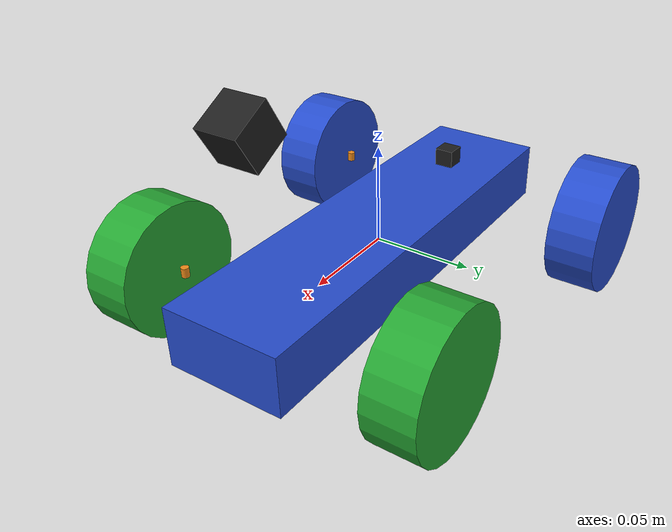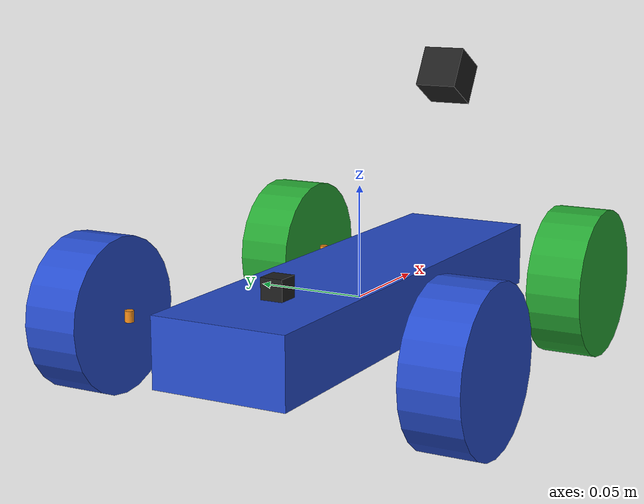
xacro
<?xml version="1.0" ?>
<robot name="jetracer" xmlns:xacro="http://www.ros.org/wiki/xacro">

  <gazebo reference="link_chassis">
    <material>Gazebo/Orange</material>
  </gazebo>
  <gazebo reference="link_back_left_wheel">
    <material>Gazebo/Blue</material>
  </gazebo>
  <gazebo reference="link_back_left_axle">
    <material>Gazebo/Orange</material>
  </gazebo>
  <gazebo reference="link_back_right_wheel">
    <material>Gazebo/Blue</material>
  </gazebo>
  <gazebo reference="link_back_right_axle">
    <material>Gazebo/Orange</material>
  </gazebo>
  <gazebo reference="link_front_left_wheel">
    <material>Gazebo/Green</material>
  </gazebo>
  <gazebo reference="link_front_left_axle">
    <material>Gazebo/Orange</material>
  </gazebo>
  <gazebo reference="link_front_right_wheel">
    <material>Gazebo/Green</material>
  </gazebo>
  <gazebo reference="link_front_right_axle">
    <material>Gazebo/Orange</material>
  </gazebo>
  <gazebo reference="camera_link">
    <material>Gazebo/Black</material>
  </gazebo>
  <gazebo reference="imu_link">
    <material>Gazebo/Black</material>
  </gazebo>

  <!-- camera -->
  <gazebo reference="camera_link">
    <sensor type="camera" name="main_cam">
      <update_rate>30.0</update_rate>
      <camera name="head">
        <horizontal_fov>1.2217305</horizontal_fov>
        <image>
          <width>640</width>
          <height>360</height>
          <format>R8G8B8</format>
        </image>
        <clip>
          <near>0.02</near>
          <far>300</far>
        </clip>
        <noise>
          <type>gaussian</type>
          <!-- Noise is sampled independently per pixel on each frame.
               That pixel's noise value is added to each of its color
               channels, which at that point lie in the range [0,1]. -->
          <mean>0.0</mean>
          <stddev>0.007</stddev>
        </noise>
      </camera>
      <plugin name="camera_controller" filename="libgazebo_ros_camera.so">
        <alwaysOn>true</alwaysOn>
        <updateRate>60.0</updateRate>
        <cameraName>camera1</cameraName>
        <imageTopicName>image_raw</imageTopicName>
        <cameraInfoTopicName>camera_info</cameraInfoTopicName>
        <frameName>camera_link</frameName>
        <hackBaseline>0.07</hackBaseline>
        <distortionK1>0.0</distortionK1>
        <distortionK2>0.0</distortionK2>
        <distortionK3>0.0</distortionK3>
        <distortionT1>0.0</distortionT1>
        <distortionT2>0.0</distortionT2>
      </plugin>
    </sensor>
  </gazebo>

  <!--IMU sensor-->
  <gazebo reference="imu_link">
    <gravity>false</gravity>
    <sensor name="imu_sensor" type="imu">
      <always_on>true</always_on>
      <update_rate>30.0</update_rate>
      <visualize>true</visualize>
      <topic>__default_topic__</topic>
      <plugin filename="libgazebo_ros_imu_sensor.so" name="imu_plugin">
        <topicName>imu</topicName>
        <bodyName>imu_link</bodyName>
        <updateRateHZ>50.0</updateRateHZ>
        <gaussianNoise>0.0</gaussianNoise>
        <xyzOffset>0 0 0</xyzOffset>
        <rpyOffset>0 0 0</rpyOffset>
        <frameName>imu_link</frameName>
        <initialOrientationAsReference>false</initialOrientationAsReference>
      </plugin>
      <pose>0 0 0 0 0 0</pose>
    </sensor>
  </gazebo>

  <link name="link_chassis">
    <!-- pose and inertial -->
    <pose>0 0 0 0 0 0</pose>
    <inertial>
      <mass value="1.03025"/>
      <origin rpy="0 0 0" xyz="0 0 0"/>
      <!--mass * ( y*y  + z * z) / 12-->
      <inertia ixx="0.00038634375" ixy="0" ixz="0" iyy="0.00461895417" iyz="0" izz="0.00485076042"/>
    </inertial>
    <!-- body -->
    <collision name="collision_chassis">
      <geometry>
        <box size="0.23 0.06 0.03"/>
      </geometry>
    </collision>
    <visual>
      <origin rpy="0 0 0" xyz="0 0 0"/>
      <geometry>
        <box size="0.23 0.06 0.03"/>
      </geometry>
      <material name="blue"/>
    </visual>
  </link>
  <!--wheels-->>
  <link name="link_back_right_wheel">
    <inertial>
      <mass value="0.0361"/>
      <origin rpy="0 -1.5707 -1.5707" xyz="0 0 0"/>
      <inertia ixx="1.231311e-5" ixy="0" ixz="0" iyy="1.231311e-5" iyz="0" izz="0.0000208658"/> <!--small i cause error,0.5*m*R^2-->
    </inertial>
    <collision name="link_back_right_wheel_collision">
      <origin rpy="0 -1.5707 -1.5707" xyz="0 0 0"/>
      <geometry>
        <cylinder length="0.025" radius="0.034"/>
      </geometry>
    </collision>
    <visual>
      <origin rpy="0 -1.5707 -1.5707" xyz="0 0 0"/>
      <geometry>
        <cylinder length="0.025" radius="0.034"/>
      </geometry>
    </visual>
  </link>

  <joint name="joint_back_right_wheel" type="continuous">
    <origin rpy="0 0 0" xyz="0.0 -0.015 0.0"/>
    <child link="link_back_right_wheel"/>
    <parent link="link_back_right_axle"/>
    <axis rpy="0 0 0" xyz="0 1 0"/>
    <limit effort="0.07" velocity="56.176"/>
    <joint_properties damping="0.01" friction="0.6"/>
  </joint>

  <link name="link_back_right_axle">
    <inertial>
      <mass value="1e-5"/>
      <origin rpy="0 0 0" xyz="0 0 0"/>
      <inertia ixx="1e-6" ixy="0" ixz="0" iyy="1e-6" iyz="0" izz="1e-6"/>
    </inertial>
    <collision name="link_front_left_axle_collision">
      <origin rpy="0 0 0" xyz="0 0 0"/>
      <geometry>
        <cylinder length="0.005" radius="0.002"/>
      </geometry>
    </collision>
    <visual>
      <origin rpy="0 0 0" xyz="0 0 0"/>
      <geometry>
        <cylinder length="0.005" radius="0.002"/>
      </geometry>
    </visual>
  </link>

  <joint name="joint_back_right_axle" type="revolute">
    <origin rpy="0 0 0" xyz="-0.075 -0.07 0.0"/>
    <child link="link_back_right_axle"/>
    <parent link="link_chassis"/>
    <axis rpy="0 0 0" xyz="0 0 -1"/>
    <limit lower="0" upper="0"
          effort="0" velocity="0"/>
    <joint_properties damping="0.01" friction="0.3"/>
  </joint>

  <link name="link_front_right_wheel">
    <inertial>
      <mass value="0.0361"/>
      <origin rpy="0 -1.5707 -1.5707" xyz="0 0 0"/>
      <inertia ixx="1.231311e-5" ixy="0" ixz="0" iyy="1.231311e-5" iyz="0" izz="0.0000208658"/> <!--ixx=iyy=mass*(L^2+3*R^2)/12;izz=mass*R*R/2-->>
    </inertial>
    <collision name="link_front_right_wheel_collision">
      <origin rpy="0 -1.5707 -1.5707" xyz="0 0 0"/>
      <geometry>
        <cylinder length="0.025" radius="0.034"/>
      </geometry>
    </collision>
    <visual>
      <origin rpy="0 -1.5707 -1.5707" xyz="0 0 0"/>
      <geometry>
        <cylinder length="0.025" radius="0.034"/>
      </geometry>
    </visual>
  </link>

  <joint name="joint_front_right_wheel" type="continuous">
    <origin rpy="0 0 0" xyz="0 -0.015 0"/>
    <child link="link_front_right_wheel"/>
    <parent link="link_front_right_axle"/>
    <axis rpy="0 0 0" xyz="0 1 0"/>
    <limit effort="0.07" velocity="56.176"/>
    <joint_properties damping="0.01" friction="0.6"/>
  </joint>

  <link name="link_front_right_axle">
    <inertial>
      <mass value="1e-5"/>
      <origin rpy="0 0 0" xyz="0 0 0"/>
      <inertia ixx="1e-6" ixy="0" ixz="0" iyy="1e-6" iyz="0" izz="1e-6"/>
    </inertial>
    <collision name="link_front_left_axle_collision">
      <origin rpy="0 0 0" xyz="0 0 0"/>
      <geometry>
        <cylinder length="0.005" radius="0.002"/>
      </geometry>
    </collision>
    <visual>
      <origin rpy="0 0 0" xyz="0 0 0"/>
      <geometry>
        <cylinder length="0.005" radius="0.002"/>
      </geometry>
    </visual>
  </link>

  <joint name="joint_front_right_axle" type="revolute">
    <origin rpy="0 0 0" xyz="0.075 -0.06 0.0"/>
    <child link="link_front_right_axle"/>
    <parent link="link_chassis"/>
    <axis rpy="0 0 0" xyz="0 0 -1"/>
    <limit lower="-0.349" upper="0.349"
          effort="30" velocity="1.396"/>
    <joint_properties damping="0.01" friction="0.3"/>
  </joint>

  <link name="link_back_left_wheel">
    <inertial>
      <mass value="0.0361"/>
      <origin rpy="0 1.5707 1.5707" xyz="0 0 0"/>
      <inertia ixx="1.231311e-5" ixy="0" ixz="0" iyy="1.231311e-5" iyz="0" izz="0.0000208658"/>
    </inertial>
    <collision name="link_back_left_wheel_collision">
      <origin rpy="0 1.5707 1.5707" xyz="0 0 0"/>
      <geometry>
        <cylinder length="0.025" radius="0.034"/>
      </geometry>
    </collision>
    <visual>
      <origin rpy="0 1.5707 1.5707" xyz="0 0 0"/>
      <geometry>
        <cylinder length="0.025" radius="0.034"/>
      </geometry>
    </visual>
  </link>

  <joint name="joint_back_left_wheel" type="continuous">
    <origin rpy="0 0 0" xyz="0.0 0.015 0.0"/>
    <child link="link_back_left_wheel"/>
    <parent link="link_back_left_axle"/>
    <axis rpy="0 0 0" xyz="0 1 0"/>
    <limit effort="0.07" velocity="56.176"/>
    <joint_properties damping="0.01" friction="0.6"/>
  </joint>

  <link name="link_back_left_axle">
    <inertial>
      <mass value="1e-5"/>
      <origin rpy="0 0 0" xyz="0 0 0"/>
      <inertia ixx="1e-6" ixy="0" ixz="0" iyy="1e-6" iyz="0" izz="1e-6"/>
    </inertial>
    <collision name="link_front_left_axle_collision">
      <origin rpy="0 0 0" xyz="0 0 0"/>
      <geometry>
        <cylinder length="0.005" radius="0.002"/>
      </geometry>
    </collision>
    <visual>
      <origin rpy="0 0 0" xyz="0 0 0"/>
      <geometry>
        <cylinder length="0.005" radius="0.002"/>
      </geometry>
    </visual>
  </link>

  <joint name="joint_back_left_axle" type="revolute">
    <origin rpy="0 0 0" xyz="-0.075 0.07 0.0"/>
    <child link="link_back_left_axle"/>
    <parent link="link_chassis"/>
    <axis rpy="0 0 0" xyz="0 0 -1"/>
    <limit lower="0" upper="0"
          effort="0" velocity="0"/>
    <joint_properties damping="0.01" friction="0.3"/>
  </joint>

  <link name="link_front_left_wheel">
    <inertial>
      <mass value="0.0361"/>
      <origin rpy="0 1.5707 1.5707" xyz="0 0 0"/>
      <inertia ixx="1.231311e-5" ixy="0" ixz="0" iyy="1.231311e-5" iyz="0" izz="0.0000208658"/>
    </inertial>
    <collision name="link_front_left_wheel_collision">
      <origin rpy="0 1.5707 1.5707" xyz="0 0 0"/>
      <geometry>
        <cylinder length="0.025" radius="0.034"/>
      </geometry>
    </collision>
    <visual>
      <origin rpy="0 1.5707 1.5707" xyz="0 0 0"/>
      <geometry>
        <cylinder length="0.025" radius="0.034"/>
      </geometry>
    </visual>
  </link>

  <joint name="joint_front_left_wheel" type="continuous">
    <origin rpy="0 0 0" xyz="0 0.015 0"/>
    <child link="link_front_left_wheel"/>
    <parent link="link_front_left_axle"/>
    <axis rpy="0 0 0" xyz="0 1 0"/>
    <limit effort="0.07" velocity="56.176"/>
    <joint_properties damping="0.01" friction="0.6"/>
  </joint>

  <link name="link_front_left_axle">
    <inertial>
      <mass value="1e-5"/>
      <origin rpy="0 0 0" xyz="0 0 0"/>
      <inertia ixx="1e-6" ixy="0" ixz="0" iyy="1e-6" iyz="0" izz="1e-6"/>
    </inertial>
    <collision name="link_front_left_axle_collision">
      <origin rpy="0 0 0" xyz="0 0 0"/>
      <geometry>
        <cylinder length="0.005" radius="0.002"/>
      </geometry>
    </collision>
    <visual>
      <origin rpy="0 0 0" xyz="0 0 0"/>
      <geometry>
        <cylinder length="0.005" radius="0.002"/>
      </geometry>
    </visual>
  </link>

  <joint name="joint_front_left_axle" type="revolute">
    <origin rpy="0 0 0" xyz="0.075 0.06 0.0"/>
    <child link="link_front_left_axle"/>
    <parent link="link_chassis"/>
    <axis rpy="0 0 0" xyz="0 0 1"/>
    <limit lower="-0.349" upper="0.349"
           effort="30" velocity="1.396"/>
    <joint_properties damping="0.01" friction="0.3"/>
  </joint>

  <!-- Camera -->
  <link name="camera_link">
	<inertial>
		<mass value = "1e-5"/>
		<origin xyz="0 0 0" rpy="0 0 0"/>
		<inertia ixx="1e-6" ixy="0" ixz="0" iyy="1e-6" iyz="0" izz="1e-6" />
	</inertial>
    <collision name = "camera_link_collision">
      	<origin xyz="0 0 0" rpy="0 0 0"/>
      	<geometry>
    		<box size="0.02 0.02 0.02"/>
      	</geometry>
    </collision>
    <visual>
      	<origin xyz="0 0 0" rpy="0 0 0"/>
      	<geometry>
    		<box size="0.02 0.02 0.02"/>
      	</geometry>
     </visual>
  </link>

  <!-- IMU Sensor -->
  <link name="imu_link">
	<inertial>
		<mass value = "1e-5"/>
		<origin xyz="0 0 0" rpy="0 0 0"/>
		<inertia ixx="1e-6" ixy="0" ixz="0" iyy="1e-6" iyz="0" izz="1e-6" />
	</inertial>
    <collision name = "camera_link_collision">
      	<origin xyz="0 0 0" rpy="0 0 0"/>
      	<geometry>
    		<box size="0.01 0.01 0.01"/>
      	</geometry>
    </collision>
    <visual>
      	<origin xyz="0 0 0" rpy="0 0 0"/>
      	<geometry>
    		<box size="0.01 0.01 0.01"/>
      	</geometry>
     </visual>
  </link>

  <joint name="camera_joint" type="fixed">
	  <origin xyz="0.09 0 0.09" rpy="0 0.5235987756 0"/>
	  <child link="camera_link"/>
    <parent link="link_chassis"/>
    <axis rpy = "0 0 0" xyz="0 1 0" />
  </joint>

  <joint name="imu_joint" type="fixed">
	  <origin xyz="-0.07 0 0.0193" rpy="0 0 0"/>
	  <child link="imu_link"/>
    <parent link="link_chassis"/>
    <axis rpy = "0 0 0" xyz="0 1 0" />
  </joint>

  <transmission name = "joint_back_left_wheel_trans">
  	<type> transmission_interface/SimpleTransmission </type>
        <joint name = "joint_back_left_wheel">
        	<hardwareInterface> hardware_interface/VelocityJointInterface </hardwareInterface>
        </joint>
        <actuator name = "joint_back_left_wheel_motor">
                <hardwareInterface> hardware_interface/VelocityJointInterface </hardwareInterface>
  		<mechanicalReduction>1</mechanicalReduction>
	</actuator>
  </transmission>

  <transmission name = "joint_back_right_wheel_trans">
  	<type> transmission_interface/SimpleTransmission </type>
        <joint name = "joint_back_right_wheel">
        	<hardwareInterface> hardware_interface/VelocityJointInterface </hardwareInterface>
        </joint>
        <actuator name = "joint_back_right_wheel_motor">
                <hardwareInterface> hardware_interface/VelocityJointInterface </hardwareInterface>
  		<mechanicalReduction>1</mechanicalReduction>
	</actuator>
  </transmission>

  <transmission name = "joint_front_left_axle_trans">
  	<type> transmission_interface/SimpleTransmission </type>
        <joint name = "joint_front_left_axle">
        	<hardwareInterface> hardware_interface/PositionJointInterface </hardwareInterface>
        </joint>
        <actuator name = "joint_front_left_axle_steering_position">
                <hardwareInterface> hardware_interface/PositionJointInterface </hardwareInterface>
  		<mechanicalReduction>1</mechanicalReduction>
	</actuator>
  </transmission>

  <transmission name = "joint_front_right_axle_trans">
  	<type> transmission_interface/SimpleTransmission </type>
        <joint name = "joint_front_right_axle">
        	<hardwareInterface> hardware_interface/PositionJointInterface </hardwareInterface>
        </joint>
        <actuator name = "joint_front_right_axle_steering_position">
                <hardwareInterface> hardware_interface/PositionJointInterface </hardwareInterface>
  		<mechanicalReduction>1</mechanicalReduction>
	</actuator>
  </transmission>

<gazebo>
  <plugin name="gazebo_ros_control" filename="libgazebo_ros_control.so">
    <robotNamespace>/jetracer</robotNamespace>
  </plugin>
</gazebo>
</robot>
